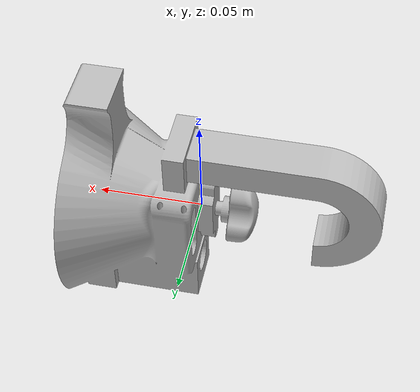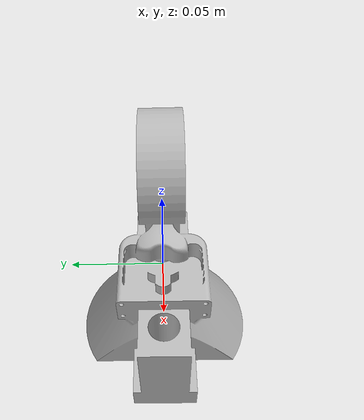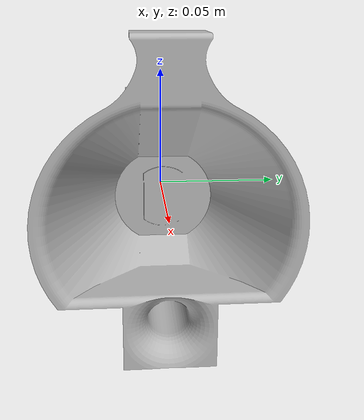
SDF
<?xml version="1.0"?>
<sdf version="1.7">

  <model name="hook">
    <!-- add_extra_module用接続位置 base_link to cog to model o 0.021+0.29613 0.001-0.00051 0.078+0.03205 -->
    <position>0.31713 0.00049 0.11005</position>

    <link name="hook_tool_link">
      <!-- Gazebo重心位置 -->
      <pose>0 0 0 0 0 0</pose>
      <inertial>
	<mass>0.19146</mass>

	<inertia>
	  <ixx>1.5917549e-4</ixx>
	  <ixy>4.48e-8</ixy>
	  <ixz>-3.439637e-5</ixz>

	  <iyy>3.7859519e-4</iyy>
	  <iyz>-4.677e-8</iyz>

	  <izz>2.7768093e-4</izz>
	</inertia>
      </inertial>
      <visual name="visual">
        <geometry>
          <mesh>
            <uri>file:///home/newuser/ros/jsk_aerial_robot_ws/src/jsk_aerial_robot/robots/gimbalrotor/src/model/hook_tool_ver2.STL</uri>
            <scale>0.001 0.001 0.001</scale>
          </mesh>
        </geometry>
      </visual>

      <collision name="shaft_collision">
	<geometry>
          <mesh>
            <uri>file:///home/newuser/ros/jsk_aerial_robot_ws/src/jsk_aerial_robot/robots/gimbalrotor/src/model/hook_tool_ver2.STL</uri>
            <scale>0.001 0.001 0.001</scale>
          </mesh>
        </geometry>
      </collision>

    </link>

  </model>

</sdf>
